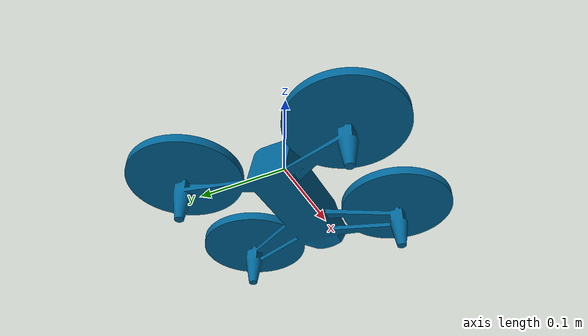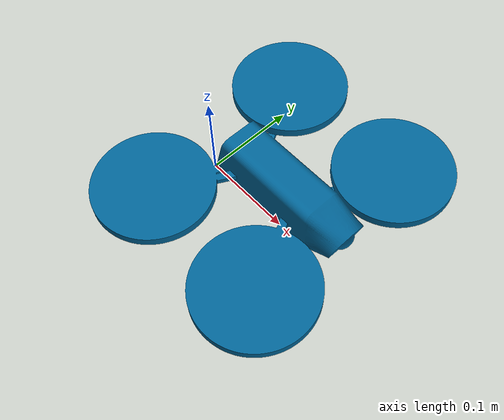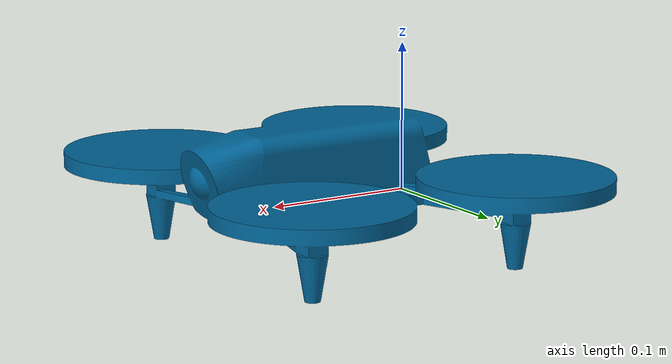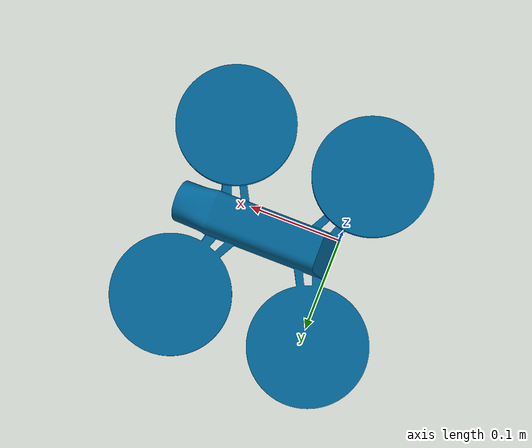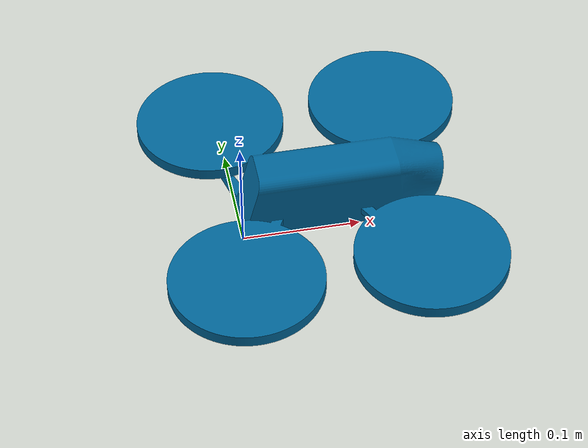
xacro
<?xml version="1.0"?>
<!-- Kinematic model, simplified visual, no collisions -->
<robot name="bebop" xmlns:xacro="http://www.ros.org/wiki/xacro">
  <xacro:property name="PI" value="3.1415926535897931" />
  <xacro:property name="camera_offset_len" value="0.1" />
  <xacro:property name="camera_offset_ver" value="0.0" />
  <!-- +- 35 degrees -->
  <xacro:property name="pan_range" value="0.6108652381980153" />
  <xacro:property name="pan_vel" value="2.0" />
  <!-- +- 35 degrees -->
  <xacro:property name="tilt_range" value="0.6108652381980153" />
  <xacro:property name="tilt_vel" value="2.0" />
  <xacro:property name="joint_effort" value="50" />

  <link name="base_link">
   <visual>
      <geometry>
        <mesh scale="1.0 1.0 1.0" filename="package://bebop_description/meshes/bebop_model.stl"/>
      </geometry>
        <material name="blue">
          <color rgba="0 0.4 0.6 1"/>
        </material>
   </visual>
  </link>
  <link name="camera_base_link"></link>
  <link name="camera_pan_link"></link>
  <link name="camera_tilt_link"></link>
  <link name="camera_optical"></link>

  <joint name="base_link_joint" type="fixed">
    <origin xyz="${camera_offset_len} 0 ${camera_offset_ver}" rpy="0 0 0" />
    <parent link="base_link"/>
    <child link="camera_base_link" />
  </joint>

  <joint name="camera_pan_joint" type="revolute">
    <origin xyz="0 0 0" rpy="0 0 0" />
    <parent link="camera_base_link" />
    <child link="camera_pan_link" />
    <axis xyz="0 0 1" />
    <limit lower="${-pan_range}" upper="${pan_range}"
      effort="${joint_effort}" velocity="${pan_vel}" />
  </joint>

  <joint name="camera_tilt_joint" type="revolute">
    <origin xyz="0 0 0" rpy="0 0 0" />
    <parent link="camera_pan_link" />
    <child link="camera_tilt_link" />
    <axis xyz="0 1 0" />
    <limit lower="${-tilt_range}" upper="${tilt_range}"
      effort="${joint_effort}" velocity="${tilt_vel}" />
  </joint>

  <joint name="camera_optical_joint" type="fixed">
    <origin xyz="0 0 0" rpy="${-PI/2} 0 ${-PI/2}" />
    <parent link="camera_tilt_link" />
    <child link="camera_optical" />
  </joint>

  <!-- [nice to have] -->
  <!-- xacro:include filename="bebop.gazebo" /-->
</robot>
